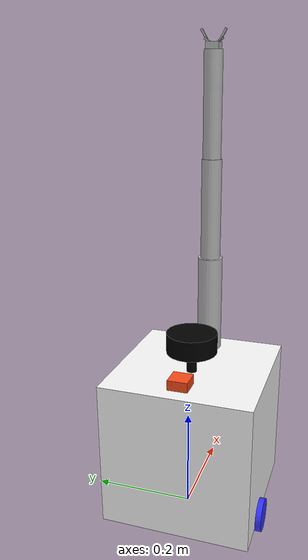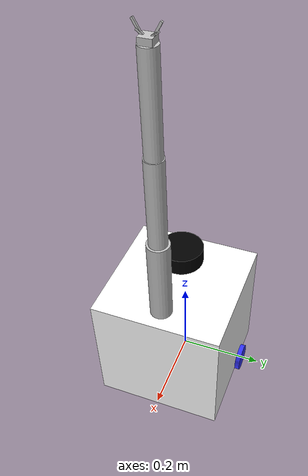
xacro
<?xml version="1.0"?>
<robot xmlns:xacro="http://www.ros.org/wiki/xacro" name="indoor_assistance_robot">

  <!-- Include Core & Sensor Xacros -->
  <xacro:include filename="robot_core.xacro"/>
  <xacro:include filename="lidar.xacro"/>
  <xacro:include filename="imu.xacro"/>

  <!-- Include 4-DOF Arm -->
  <xacro:include filename="iris_arm.xacro"/>

</robot>

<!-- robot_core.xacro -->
<robot xmlns:xacro="http://www.ros.org/wiki/xacro">

    <xacro:include filename="inertial_macros.xacro"/>

    <xacro:property name="chassis_length" value="0.3"/>
    <xacro:property name="chassis_width" value="0.3"/>
    <xacro:property name="chassis_height" value="0.30"/>
    <xacro:property name="chassis_mass" value="1.0"/>
    <xacro:property name="wheel_radius" value="0.033"/>
    <xacro:property name="wheel_thickness" value="0.026"/>
    <xacro:property name="wheel_mass" value="0.05"/>
    <xacro:property name="wheel_offset_x" value="0.1"/>
    <xacro:property name="wheel_offset_y" value="0.1485"/>
    <xacro:property name="wheel_offset_z" value="0.01"/>
    <xacro:property name="caster_wheel_radius" value="0.033"/>
    <xacro:property name="caster_wheel_mass" value="0.01"/>
    <xacro:property name="caster_wheel_offset_x" value="0.24"/>
    <xacro:property name="caster_wheel_offset_z" value="${wheel_offset_z - wheel_radius + caster_wheel_radius}"/>

    <material name="white">
        <color rgba="1 1 1 1"/>
    </material>

    <material name="orange">
        <color rgba="1 0.3 0.1 1"/>
    </material>

    <material name="blue">
        <color rgba="0.2 0.2 1 1"/>
    </material>

    <material name="black">
        <color rgba="0 0 0 1"/>
    </material>

    <material name="red">
        <color rgba="1 0 0 1"/>
    </material>

    <link name="base_link">
    </link>

    <joint name="base_footprint_joint" type="fixed">
        <parent link="base_link"/>
        <child link="base_footprint"/>
        <origin xyz="0 0 0" rpy="0 0 0"/>
    </joint>

    <link name="base_footprint">
    </link>

    <joint name="chassis_joint" type="fixed">
        <parent link="base_link"/>
        <child link="chassis"/>
        <origin xyz="-${wheel_offset_x} 0 -${wheel_offset_z}"/>
    </joint>

    <link name="chassis">
        <visual>
            <origin xyz="${chassis_length/2} 0 ${chassis_height/2}"/>
            <geometry>
                <box size="${chassis_length} ${chassis_width} ${chassis_height}"/>
            </geometry>
            <material name="white"/>
        </visual>
        <collision>
            <origin xyz="${chassis_length/2} 0 ${chassis_height/2}"/>
            <geometry>
                <box size="${chassis_length} ${chassis_width} ${chassis_height}"/>
            </geometry>
        </collision>
        <xacro:inertial_box mass="${chassis_mass}" x="${chassis_length}" y="${chassis_width}" z="${chassis_height}">
            <origin xyz="${chassis_length/2} 0 ${chassis_height/2}" rpy="0 0 0"/>
        </xacro:inertial_box>
    </link>

    <gazebo reference="chassis">
        <material>Gazebo/White</material>
    </gazebo>

    <!-- LEFT WHEEL -->
    <joint name="left_wheel_joint" type="continuous">
        <parent link="base_link"/>
        <child link="left_wheel"/>
        <origin xyz="0 ${wheel_offset_y} 0" rpy="-1.570795 0 0" />
        <axis xyz="0 0 1"/>
    </joint>

    <link name="left_wheel">
        <visual>
            <geometry>
                <cylinder radius="${wheel_radius}" length="${wheel_thickness}"/>
            </geometry>
            <material name="blue"/>
        </visual>
        <collision>
            <geometry>
                <sphere radius="${wheel_radius}"/>
            </geometry>
        </collision>
        <xacro:inertial_cylinder mass="${wheel_mass}" length="${wheel_thickness}" radius="${wheel_radius}">
            <origin xyz="0 0 0" rpy="0 0 0"/>
        </xacro:inertial_cylinder>
    </link>

    <gazebo reference="left_wheel">
        <material>Gazebo/Blue</material>
    </gazebo>

    <!-- RIGHT WHEEL -->
    <joint name="right_wheel_joint" type="continuous">
        <parent link="base_link"/>
        <child link="right_wheel"/>
        <origin xyz="0 -${wheel_offset_y} 0" rpy="1.570795 0 0" />
        <axis xyz="0 0 -1"/>
    </joint>

    <link name="right_wheel">
        <visual>
            <geometry>
                <cylinder radius="${wheel_radius}" length="${wheel_thickness}"/>
            </geometry>
            <material name="blue"/>
        </visual>
        <collision>
            <geometry>
                <sphere radius="${wheel_radius}"/>
            </geometry>
        </collision>
        <xacro:inertial_cylinder mass="${wheel_mass}" length="${wheel_thickness}" radius="${wheel_radius}">
            <origin xyz="0 0 0" rpy="0 0 0"/>
        </xacro:inertial_cylinder>
    </link>

    <gazebo reference="right_wheel">
        <material>Gazebo/Blue</material>
    </gazebo>

    <!-- CASTER WHEEL -->
    <joint name="caster_wheel_joint" type="fixed">
        <parent link="chassis"/>
        <child link="caster_wheel"/>
        <origin xyz="${caster_wheel_offset_x} 0 ${caster_wheel_offset_z}"/>
    </joint>

    <link name="caster_wheel">
        <visual>
            <geometry>
                <sphere radius="${caster_wheel_radius}"/>
            </geometry>
            <material name="black"/>
        </visual>
        <collision>
            <geometry>
                <sphere radius="${caster_wheel_radius}"/>
            </geometry>
        </collision>
        <xacro:inertial_sphere mass="${caster_wheel_mass}" radius="${caster_wheel_radius}">
            <origin xyz="0 0 0" rpy="0 0 0"/>
        </xacro:inertial_sphere>
    </link>

    <gazebo reference="caster_wheel">
        <material>Gazebo/Black</material>
        <mu1 value="0.001"/>
        <mu2 value="0.001"/>
    </gazebo>

    <!-- DIFFERENTIAL DRIVE PLUGIN FOR GAZEBO -->
    <gazebo>
        <plugin name="diff_drive" filename="libgazebo_ros_diff_drive.so">
            <!-- Wheel Joints -->
            <left_joint>left_wheel_joint</left_joint>
            <right_joint>right_wheel_joint</right_joint>

            <!-- Kinematics -->
            <wheel_separation>0.297</wheel_separation>
            <wheel_diameter>0.066</wheel_diameter>

            <!-- Limits -->
            <max_wheel_torque>200</max_wheel_torque>
            <max_wheel_acceleration>10.0</max_wheel_acceleration>

            <!-- Frame Definitions -->
            <odometry_frame>odom</odometry_frame>
            <robot_base_frame>base_link</robot_base_frame>

            <!-- Enable TF Broadcasting -->
            <publish_odom>true</publish_odom>
            <publish_odom_tf>true</publish_odom_tf>
            <publish_wheel_tf>true</publish_wheel_tf>

            <update_rate>30</update_rate>
        </plugin>
    </gazebo>
</robot>

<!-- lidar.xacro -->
<robot xmlns:xacro="http://www.ros.org/wiki/xacro" >

    <joint name="laser_joint" type="fixed">
        <parent link="chassis"/>
        <child link="laser_frame"/>
        <origin xyz="0.122 0 0.362" rpy="0 0 0"/>
    </joint>

    <link name="laser_frame">
        <visual>
            <geometry>
                <cylinder radius="0.05" length="0.04"/>
            </geometry>
            <material name="black"/>
        </visual>
        <visual>
            <origin xyz="0 0 -0.05"/>
            <geometry>
                <cylinder radius="0.01" length="0.1"/>
            </geometry>
            <material name="black"/>
        </visual>
        <collision>
            <geometry>
                <cylinder radius="0.05" length="0.04"/>
            </geometry>
        </collision>
        <xacro:inertial_cylinder mass="0.1" length="0.04" radius="0.05">
            <origin xyz="0 0 0" rpy="0 0 0"/>
        </xacro:inertial_cylinder>
    </link>

    <gazebo reference="laser_frame">
        <material>Gazebo/Black</material>

        <sensor name="laser" type="ray">
            <pose> 0 0 0 0 0 0 </pose>
            <visualize>true</visualize>

            <update_rate>10</update_rate>
            <ray>
                <scan>
                    <horizontal>
                        <samples>360</samples>
                        <min_angle>-3.14</min_angle>
                        <max_angle>3.14</max_angle>
                    </horizontal>
                </scan>
                <range>
                    <min>0.3</min>
                    <max>12</max>
                </range>
            </ray>
            <plugin name="laser_controller" filename="libgazebo_ros_ray_sensor.so">
                <ros>
                    <argument>~/out:=scan</argument>
                </ros>
                <output_type>sensor_msgs/LaserScan</output_type>
                <frame_name>laser_frame</frame_name>
            </plugin>
        </sensor>
    </gazebo>

</robot>

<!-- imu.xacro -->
<robot xmlns:xacro="http://www.ros.org/wiki/xacro">

    <link name="imu_link">
        <visual>
            <geometry>
                <box size="0.04 0.04 0.02"/>
            </geometry>
            <material name="orange">
                <color rgba="1.0 0.3 0.1 1.0"/>
            </material>
        </visual>
        <collision>
            <geometry>
                <box size="0.04 0.04 0.02"/>
            </geometry>
        </collision>
        <xacro:inertial_box mass="0.01" x="0.04" y="0.04" z="0.02">
            <origin xyz="0 0 0" rpy="0 0 0"/>
        </xacro:inertial_box>
    </link>

    <joint name="imu_joint" type="fixed">
        <parent link="chassis"/>
        <child link="imu_link"/>
        <origin xyz="0.05 0 0.31" rpy="0 0 0"/>
    </joint>

    <gazebo reference="imu_link">
        <material>Gazebo/Orange</material>
        <sensor name="imu_sensor" type="imu">
            <plugin filename="libgazebo_ros_imu_sensor.so" name="imu_plugin">
                <ros>
                    <namespace>/demo</namespace>
                    <remapping>~/out:=imu</remapping>
                </ros>
                <initial_orientation_as_reference>false</initial_orientation_as_reference>
            </plugin>
            <always_on>true</always_on>
            <update_rate>100</update_rate>
            <visualize>true</visualize>
            <imu>
                <angular_velocity>
                    <x>
                        <noise type="gaussian">
                            <mean>0.0</mean>
                            <stddev>2e-4</stddev>
                            <bias_mean>0.0000075</bias_mean>
                            <bias_stddev>0.0000008</bias_stddev>
                        </noise>
                    </x>
                    <y>
                        <noise type="gaussian">
                            <mean>0.0</mean>
                            <stddev>2e-4</stddev>
                            <bias_mean>0.0000075</bias_mean>
                            <bias_stddev>0.0000008</bias_stddev>
                        </noise>
                    </y>
                    <z>
                        <noise type="gaussian">
                            <mean>0.0</mean>
                            <stddev>2e-4</stddev>
                            <bias_mean>0.0000075</bias_mean>
                            <bias_stddev>0.0000008</bias_stddev>
                        </noise>
                    </z>
                </angular_velocity>
                <linear_acceleration>
                    <x>
                        <noise type="gaussian">
                            <mean>0.0</mean>
                            <stddev>1.7e-2</stddev>
                            <bias_mean>0.1</bias_mean>
                            <bias_stddev>0.001</bias_stddev>
                        </noise>
                    </x>
                    <y>
                        <noise type="gaussian">
                            <mean>0.0</mean>
                            <stddev>1.7e-2</stddev>
                            <bias_mean>0.1</bias_mean>
                            <bias_stddev>0.001</bias_stddev>
                        </noise>
                    </y>
                    <z>
                        <noise type="gaussian">
                            <mean>0.0</mean>
                            <stddev>1.7e-2</stddev>
                            <bias_mean>0.1</bias_mean>
                            <bias_stddev>0.001</bias_stddev>
                        </noise>
                    </z>
                </linear_acceleration>
            </imu>
        </sensor>
    </gazebo>

</robot>

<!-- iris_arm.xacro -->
<robot xmlns:xacro="http://www.ros.org/wiki/xacro">

    <!-- Arm Base Link (Torso) -->
    <link name="torso">
        <inertial>
            <mass value="0.05"/>
            <origin rpy="0 0 0" xyz="0 0 0.1"/>
            <inertia ixx="0.0001" iyy="0.0001" izz="0.00005" ixy="0" ixz="0" iyz="0"/>
        </inertial>
        <visual>
            <geometry>
                <cylinder length="0.2" radius="0.025"/>
            </geometry>
            <material name="silver">
                <color rgba="0.75 0.75 0.75 1"/>
            </material>
            <origin rpy="0 0 0" xyz="0.0 0.0 0.1"/>
        </visual>
        <collision>
            <geometry>
                <cylinder length="0.2" radius="0.025"/>
            </geometry>
            <origin rpy="0 0 0" xyz="0.0 0.0 0.1"/>
        </collision>
    </link>

    <!-- Joint: Hip (FIXED) -->
    <joint name="hip" type="fixed">
        <axis xyz="0 0 1"/>
        <parent link="chassis"/>
        <child link="torso"/>
        <origin rpy="0 0 0" xyz="0.25 0 0.30"/>
    </joint>

    <!-- Upper Arm -->
    <link name="upper_arm">
        <inertial>
            <mass value="0.03"/>
            <origin rpy="0 0 0" xyz="0 0 0.1"/>
            <inertia ixx="0.00008" iyy="0.00008" izz="0.00002" ixy="0" ixz="0" iyz="0"/>
        </inertial>
        <visual>
            <geometry>
                <cylinder length="0.2" radius="0.02"/>
            </geometry>
            <material name="silver"/>
            <origin rpy="0 0 0" xyz="0 0 0.1"/>
        </visual>
        <collision>
            <geometry>
                <cylinder length="0.2" radius="0.02"/>
            </geometry>
            <origin rpy="0 0 0" xyz="0 0 0.1"/>
        </collision>
    </link>

    <!-- Joint: Shoulder Pitch (FIXED) -->
    <joint name="shoulder" type="fixed">
        <axis xyz="0 1 0"/>
        <parent link="torso"/>
        <child link="upper_arm"/>
        <origin rpy="0 0 0" xyz="0.0 0.0 0.20"/>
    </joint>

    <!-- Lower Arm -->
    <link name="lower_arm">
        <inertial>
            <mass value="0.02"/>
            <origin rpy="0 0 0" xyz="0 0 0.1"/>
            <inertia ixx="0.00004" iyy="0.00004" izz="0.00001" ixy="0" ixz="0" iyz="0"/>
        </inertial>
        <visual>
            <geometry>
                <cylinder length="0.2" radius="0.018"/>
            </geometry>
            <material name="silver"/>
            <origin rpy="0 0 0" xyz="0 0 0.1"/>
        </visual>
        <collision>
            <geometry>
                <cylinder length="0.2" radius="0.018"/>
            </geometry>
            <origin rpy="0 0 0" xyz="0 0 0.1"/>
        </collision>
    </link>

    <!-- Joint: Elbow Pitch (FIXED) -->
    <joint name="elbow" type="fixed">
        <axis xyz="0 1 0"/>
        <parent link="upper_arm"/>
        <child link="lower_arm"/>
        <origin rpy="0 0 0" xyz="0.0 0.0 0.20"/>
    </joint>

    <!-- Hand -->
    <link name="hand">
        <inertial>
            <mass value="0.01"/>
            <inertia ixx="0.00001" iyy="0.00001" izz="0.00001" ixy="0" ixz="0" iyz="0"/>
        </inertial>
        <visual>
            <geometry>
                <box size="0.025 0.025 0.025"/>
            </geometry>
            <material name="silver"/>
        </visual>
        <collision>
            <geometry>
                <box size="0.025 0.025 0.025"/>
            </geometry>
        </collision>
    </link>

    <!-- Joint: Wrist Roll (FIXED) -->
    <joint name="wrist" type="fixed">
        <axis xyz="0 1 0"/>
        <parent link="lower_arm"/>
        <child link="hand"/>
        <origin rpy="0 0 0" xyz="0.0 0.0 0.20"/>
    </joint>

    <!-- Grippers -->
    <link name="left_gripper_base">
        <inertial>
            <mass value="0.001"/>
            <inertia ixx="1e-8" iyy="1e-8" izz="1e-8" ixy="0" ixz="0" iyz="0"/>
        </inertial>
        <visual>
            <geometry>
                <box size="0.004 0.004 0.015"/>
            </geometry>
            <material name="silver"/>
        </visual>
        <collision>
            <geometry>
                <box size="0.004 0.004 0.015"/>
            </geometry>
        </collision>
    </link>

    <!-- Joint: Left Gripper Base (FIXED) -->
    <joint name="l_g_base" type="fixed">
        <axis xyz="1 0 0"/>
        <origin rpy="-0.9162 0 0" xyz="0 0.012 0.015"/>
        <parent link="hand"/>
        <child link="left_gripper_base"/>
    </joint>

    <link name="right_gripper_base">
        <inertial>
            <mass value="0.001"/>
            <inertia ixx="1e-8" iyy="1e-8" izz="1e-8" ixy="0" ixz="0" iyz="0"/>
        </inertial>
        <visual>
            <geometry>
                <box size="0.004 0.004 0.015"/>
            </geometry>
            <material name="silver"/>
        </visual>
        <collision>
            <geometry>
                <box size="0.004 0.004 0.015"/>
            </geometry>
        </collision>
    </link>

    <!-- Joint: Right Gripper Base (FIXED) -->
    <joint name="r_g_base" type="fixed">
        <axis xyz="1 0 0"/>
        <origin rpy="0.9162 0 0" xyz="0 -0.012 0.015"/>
        <parent link="hand"/>
        <child link="right_gripper_base"/>
    </joint>

    <link name="left_gripper_finger">
        <inertial>
            <mass value="0.0005"/>
            <inertia ixx="1e-8" iyy="1e-8" izz="1e-8" ixy="0" ixz="0" iyz="0"/>
        </inertial>
        <visual>
            <geometry>
                <box size="0.004 0.004 0.025"/>
            </geometry>
            <material name="silver"/>
        </visual>
        <collision>
            <geometry>
                <box size="0.004 0.004 0.025"/>
            </geometry>
        </collision>
    </link>

    <joint name="l_g_finger" type="fixed">
        <origin rpy="0.3926 0 0" xyz="0 -0.004 0.01"/>
        <parent link="left_gripper_base"/>
        <child link="left_gripper_finger"/>
    </joint>

    <link name="right_gripper_finger">
        <inertial>
            <mass value="0.0005"/>
            <inertia ixx="1e-8" iyy="1e-8" izz="1e-8" ixy="0" ixz="0" iyz="0"/>
        </inertial>
        <visual>
            <geometry>
                <box size="0.004 0.004 0.025"/>
            </geometry>
            <material name="silver"/>
        </visual>
        <collision>
            <geometry>
                <box size="0.004 0.004 0.025"/>
            </geometry>
        </collision>
    </link>

    <joint name="r_g_finger" type="fixed">
        <origin rpy="-0.3926 0 0" xyz="0 0.004 0.01"/>
        <parent link="right_gripper_base"/>
        <child link="right_gripper_finger"/>
    </joint>

</robot>
